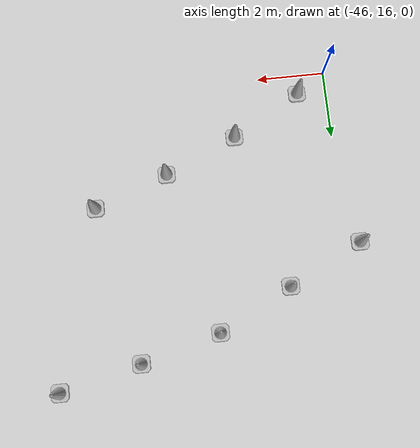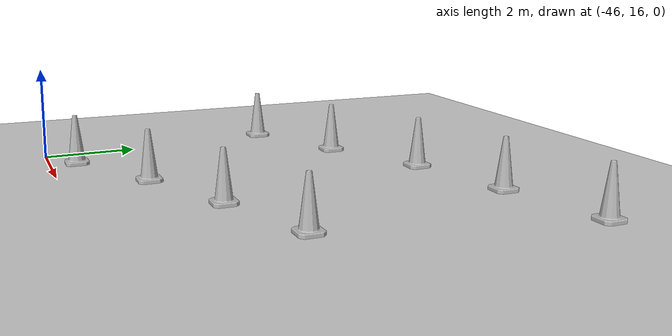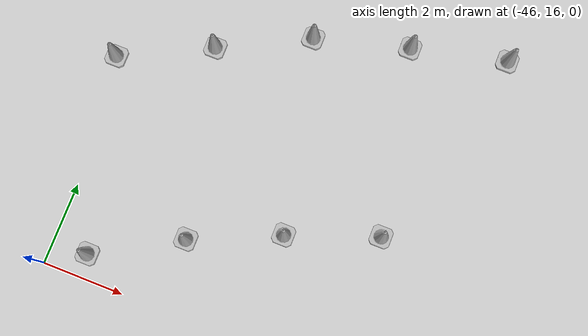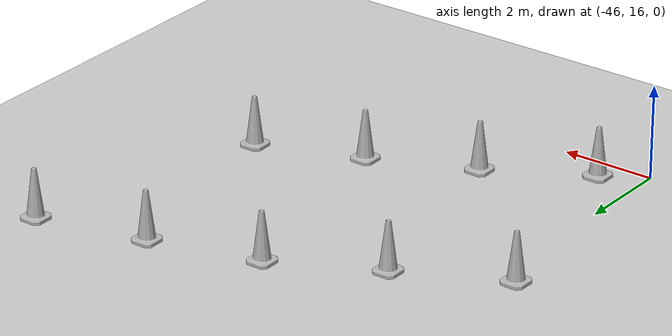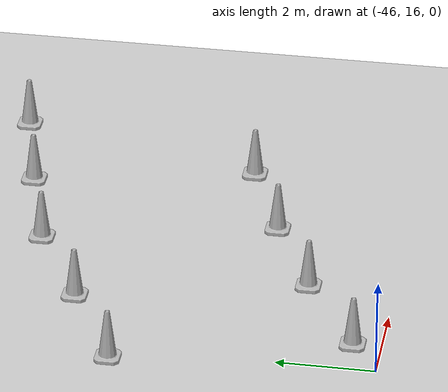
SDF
<sdf version="1.7">
 <world name="default">
  <model name="ground_plane">
   <static>1</static>
   <link name="link">
    <collision name="collision">
     <geometry><plane><normal>0 0 1</normal><size>125 125</size></plane></geometry>
     <surface>
      <contact><collide_bitmask>65535</collide_bitmask></contact>
      <friction><ode><mu>100</mu><mu2>50</mu2></ode></friction>
     </surface>
    </collision>
    <visual name="visual">
     <cast_shadows>0</cast_shadows>
     <geometry><plane><normal>0 0 1</normal><size>125 125</size></plane></geometry>
     <material>
      <script><uri>file://media/materials/scripts/gazebo.material</uri><name>Gazebo/Grey</name></script>
     </material>
    </visual>
   </link>
  </model>
  <model name="Construction Cone 64">
   <link name="link">
    <collision name="collision">
     <geometry>
      <mesh><scale>10 10 10</scale><uri>model://construction_cone/meshes/construction_cone.dae</uri></mesh>
     </geometry>
    </collision>
    <visual name="visual">
     <geometry>
      <mesh><scale>10 10 10</scale><uri>model://construction_cone/meshes/construction_cone.dae</uri></mesh>
     </geometry>
    </visual>
    <inertial>
     <inertia><ixx>1</ixx><ixy>0</ixy><ixz>0</ixz><iyy>1</iyy><iyz>0</iyz><izz>1</izz></inertia>
     <mass>1</mass>
    </inertial>
   </link>
   <pose>-37.47525161880874 24.63535582765605 0 0 0 0</pose>
  </model>
  <model name="Construction Cone 68">
   <link name="link">
    <collision name="collision">
     <geometry>
      <mesh><scale>10 10 10</scale><uri>model://construction_cone/meshes/construction_cone.dae</uri></mesh>
     </geometry>
    </collision>
    <visual name="visual">
     <geometry>
      <mesh><scale>10 10 10</scale><uri>model://construction_cone/meshes/construction_cone.dae</uri></mesh>
     </geometry>
    </visual>
    <inertial>
     <inertia><ixx>1</ixx><ixy>0</ixy><ixz>0</ixz><iyy>1</iyy><iyz>0</iyz><izz>1</izz></inertia>
     <mass>1</mass>
    </inertial>
   </link>
   <pose>-39.79275161880874 24.07285582765605 0 0 0 0</pose>
  </model>
  <model name="Construction Cone 72">
   <link name="link">
    <collision name="collision">
     <geometry>
      <mesh><scale>10 10 10</scale><uri>model://construction_cone/meshes/construction_cone.dae</uri></mesh>
     </geometry>
    </collision>
    <visual name="visual">
     <geometry>
      <mesh><scale>10 10 10</scale><uri>model://construction_cone/meshes/construction_cone.dae</uri></mesh>
     </geometry>
    </visual>
    <inertial>
     <inertia><ixx>1</ixx><ixy>0</ixy><ixz>0</ixz><iyy>1</iyy><iyz>0</iyz><izz>1</izz></inertia>
     <mass>1</mass>
    </inertial>
   </link>
   <pose>-42.08775161880874 23.442855827656047 0 0 0 0</pose>
  </model>
  <model name="Construction Cone 76">
   <link name="link">
    <collision name="collision">
     <geometry>
      <mesh><scale>10 10 10</scale><uri>model://construction_cone/meshes/construction_cone.dae</uri></mesh>
     </geometry>
    </collision>
    <visual name="visual">
     <geometry>
      <mesh><scale>10 10 10</scale><uri>model://construction_cone/meshes/construction_cone.dae</uri></mesh>
     </geometry>
    </visual>
    <inertial>
     <inertia><ixx>1</ixx><ixy>0</ixy><ixz>0</ixz><iyy>1</iyy><iyz>0</iyz><izz>1</izz></inertia>
     <mass>1</mass>
    </inertial>
   </link>
   <pose>-44.22525161880874 22.340355827656047 0 0 0 0</pose>
  </model>
  <model name="Construction Cone 79">
   <link name="link">
    <collision name="collision">
     <geometry>
      <mesh><scale>10 10 10</scale><uri>model://construction_cone/meshes/construction_cone.dae</uri></mesh>
     </geometry>
    </collision>
    <visual name="visual">
     <geometry>
      <mesh><scale>10 10 10</scale><uri>model://construction_cone/meshes/construction_cone.dae</uri></mesh>
     </geometry>
    </visual>
    <inertial>
     <inertia><ixx>1</ixx><ixy>0</ixy><ixz>0</ixz><iyy>1</iyy><iyz>0</iyz><izz>1</izz></inertia>
     <mass>1</mass>
    </inertial>
   </link>
   <pose>-46.38525161880874 21.26035582765605 0 0 0 0</pose>
  </model>
  <model name="Construction Cone 89">
   <link name="link">
    <collision name="collision">
     <geometry>
      <mesh><scale>10 10 10</scale><uri>model://construction_cone/meshes/construction_cone.dae</uri></mesh>
     </geometry>
    </collision>
    <visual name="visual">
     <geometry>
      <mesh><scale>10 10 10</scale><uri>model://construction_cone/meshes/construction_cone.dae</uri></mesh>
     </geometry>
    </visual>
    <inertial>
     <inertia><ixx>1</ixx><ixy>0</ixy><ixz>0</ixz><iyy>1</iyy><iyz>0</iyz><izz>1</izz></inertia>
     <mass>1</mass>
    </inertial>
   </link>
   <pose>-38.82525161880874 19.50535582765605 0 0 0 0</pose>
  </model>
  <model name="Construction Cone 94">
   <link name="link">
    <collision name="collision">
     <geometry>
      <mesh><scale>10 10 10</scale><uri>model://construction_cone/meshes/construction_cone.dae</uri></mesh>
     </geometry>
    </collision>
    <visual name="visual">
     <geometry>
      <mesh><scale>10 10 10</scale><uri>model://construction_cone/meshes/construction_cone.dae</uri></mesh>
     </geometry>
    </visual>
    <inertial>
     <inertia><ixx>1</ixx><ixy>0</ixy><ixz>0</ixz><iyy>1</iyy><iyz>0</iyz><izz>1</izz></inertia>
     <mass>1</mass>
    </inertial>
   </link>
   <pose>-40.985251618808746 18.69535582765605 0 0 0 0</pose>
  </model>
  <model name="Construction Cone 96">
   <link name="link">
    <collision name="collision">
     <geometry>
      <mesh><scale>10 10 10</scale><uri>model://construction_cone/meshes/construction_cone.dae</uri></mesh>
     </geometry>
    </collision>
    <visual name="visual">
     <geometry>
      <mesh><scale>10 10 10</scale><uri>model://construction_cone/meshes/construction_cone.dae</uri></mesh>
     </geometry>
    </visual>
    <inertial>
     <inertia><ixx>1</ixx><ixy>0</ixy><ixz>0</ixz><iyy>1</iyy><iyz>0</iyz><izz>1</izz></inertia>
     <mass>1</mass>
    </inertial>
   </link>
   <pose>-43.10025161880874 17.75035582765605 0 0 0 0</pose>
  </model>
  <model name="Construction Cone 104">
   <link name="link">
    <collision name="collision">
     <geometry>
      <mesh><scale>10 10 10</scale><uri>model://construction_cone/meshes/construction_cone.dae</uri></mesh>
     </geometry>
    </collision>
    <visual name="visual">
     <geometry>
      <mesh><scale>10 10 10</scale><uri>model://construction_cone/meshes/construction_cone.dae</uri></mesh>
     </geometry>
    </visual>
    <inertial>
     <inertia><ixx>1</ixx><ixy>0</ixy><ixz>0</ixz><iyy>1</iyy><iyz>0</iyz><izz>1</izz></inertia>
     <mass>1</mass>
    </inertial>
   </link>
   <pose>-45.12975161880874 16.57585582765605 0 0 0 0</pose>
  </model>
 </world>
</sdf>
